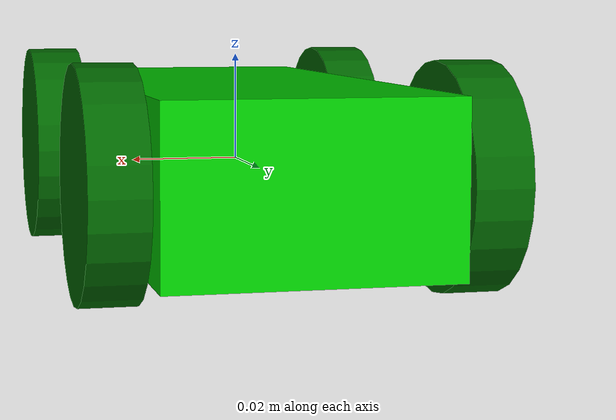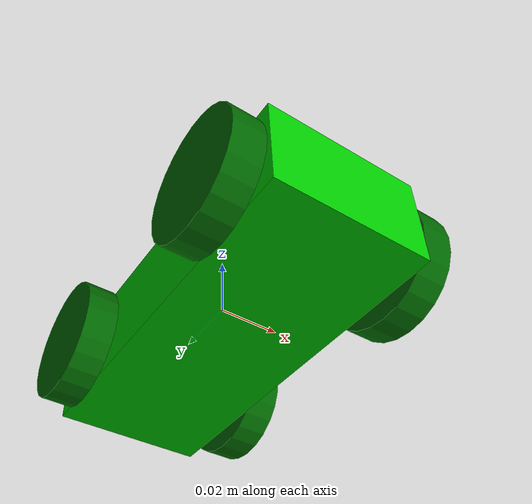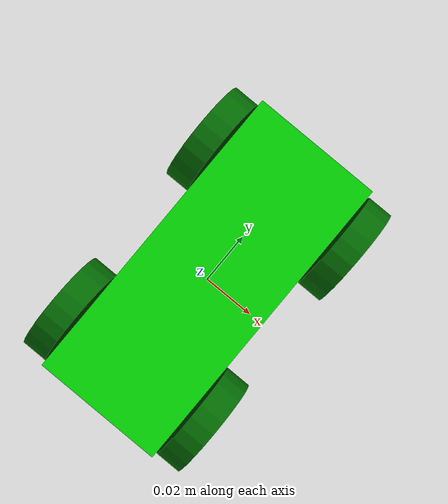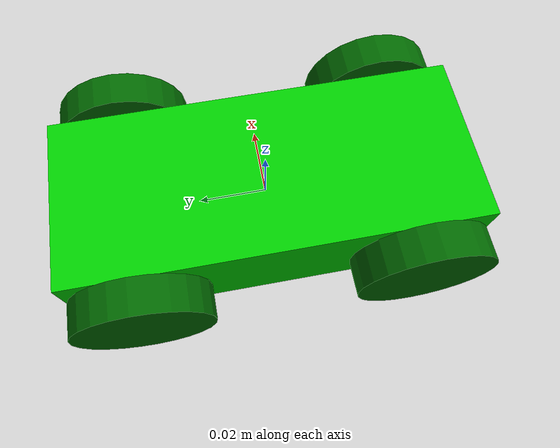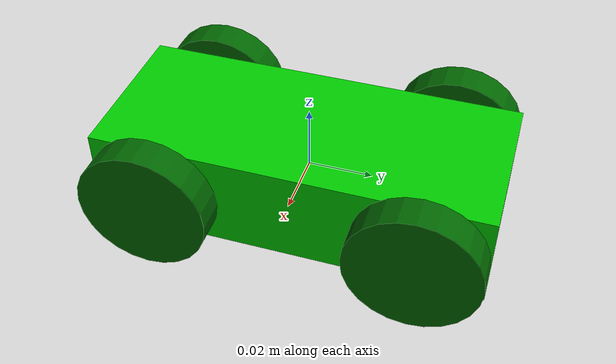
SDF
<?xml version='1.0'?>
<sdf version='1.6'>
  <model name='Robot1'>
    <link name='chassis'>
      <inertial>
        <mass>1</mass>
        <inertia>
          <ixx>0.166667</ixx>
          <ixy>0</ixy>
          <ixz>0</ixz>
          <iyy>0.166667</iyy>
          <iyz>0</iyz>
          <izz>0.166667</izz>
        </inertia>
        <pose frame=''>0 0 0 0 -0 0</pose>
      </inertial>
      <pose frame=''>0 0 -0 0 -0 0</pose>
      <gravity>1</gravity>
      <self_collide>0</self_collide>
      <kinematic>0</kinematic>
      <enable_wind>0</enable_wind>
      <visual name='visual'>
        <pose frame=''>0 0 0 0 -0 0</pose>
        <geometry>
          <box>
            <size>0.05 0.12 0.03</size>
          </box>
        </geometry>
        <material>
          <lighting>1</lighting>
          <script>
            <uri>file://media/materials/scripts/gazebo.material</uri>
            <name>Gazebo/Grey</name>
          </script>
          <shader type='pixel'>
            <normal_map>__default__</normal_map>
          </shader>
          <ambient>0 0.8 0 1</ambient>
          <diffuse>0 0.8 0 1</diffuse>
          <specular>0 0.8 0 1</specular>
          <emissive>0 0 0 1</emissive>
        </material>
        <transparency>0</transparency>
        <cast_shadows>1</cast_shadows>
      </visual>
      <collision name='collision'>
        <laser_retro>0</laser_retro>
        <max_contacts>10</max_contacts>
        <pose frame=''>0 0 0 0 -0 0</pose>
        <geometry>
          <box>
            <size>0.05 0.12 0.03</size>
          </box>
        </geometry>
        <surface>
          <friction>
            <ode>
              <mu>1</mu>
              <mu2>1</mu2>
              <fdir1>0 0 0</fdir1>
              <slip1>0</slip1>
              <slip2>0</slip2>
            </ode>
            <torsional>
              <coefficient>1</coefficient>
              <patch_radius>0</patch_radius>
              <surface_radius>0</surface_radius>
              <use_patch_radius>1</use_patch_radius>
              <ode>
                <slip>0</slip>
              </ode>
            </torsional>
          </friction>
          <bounce>
            <restitution_coefficient>0</restitution_coefficient>
            <threshold>1e+06</threshold>
          </bounce>
          <contact>
            <collide_without_contact>0</collide_without_contact>
            <collide_without_contact_bitmask>1</collide_without_contact_bitmask>
            <collide_bitmask>1</collide_bitmask>
            <ode>
              <soft_cfm>0</soft_cfm>
              <soft_erp>0.2</soft_erp>
              <kp>1e+13</kp>
              <kd>1</kd>
              <max_vel>0.01</max_vel>
              <min_depth>0</min_depth>
            </ode>
            <bullet>
              <split_impulse>1</split_impulse>
              <split_impulse_penetration_threshold>-0.01</split_impulse_penetration_threshold>
              <soft_cfm>0</soft_cfm>
              <soft_erp>0.2</soft_erp>
              <kp>1e+13</kp>
              <kd>1</kd>
            </bullet>
          </contact>
        </surface>
      </collision>
    </link>

    <!-- wheel_fl -->

    <link name='wheel_fl'>
      <inertial>
        <mass>1</mass>
        <inertia>
          <ixx>0.145833</ixx>
          <ixy>0</ixy>
          <ixz>0</ixz>
          <iyy>0.145833</iyy>
          <iyz>0</iyz>
          <izz>0.125</izz>
        </inertia>
        <pose frame=''>0 0 0 0 -0 0</pose>
      </inertial>
      <pose frame=''>-0.031 0.04 -0 1.5707 0 1.5707</pose>
      <gravity>1</gravity>
      <self_collide>0</self_collide>
      <kinematic>0</kinematic>
      <enable_wind>0</enable_wind>
      <visual name='visual'>
        <pose frame=''>0 0 0 0 -0 0</pose>
        <geometry>
          <cylinder>
            <radius>0.02</radius>
            <length>0.01</length>
          </cylinder>
        </geometry>
        <material>
          <lighting>1</lighting>
          <script>
            <uri>file://media/materials/scripts/gazebo.material</uri>
            <name>Gazebo/Grey</name>
          </script>
          <shader type='pixel'>
            <normal_map>__default__</normal_map>
          </shader>
          <ambient>0 0.4 0 1</ambient>
          <diffuse>0 0.4 0 1</diffuse>
          <specular>0 0.4 0 1</specular>
          <emissive>0 0 0 1</emissive>
        </material>
        <transparency>0</transparency>
        <cast_shadows>1</cast_shadows>
      </visual>
      <collision name='collision'>
        <laser_retro>0</laser_retro>
        <max_contacts>10</max_contacts>
        <pose frame=''>0 0 0 0 -0 0</pose>
        <geometry>
          <cylinder>
            <radius>0.02</radius>
            <length>0.01</length>
          </cylinder>
        </geometry>
        <surface>
          <friction>
            <ode>
              <mu>1</mu>
              <mu2>1</mu2>
              <fdir1>0 0 0</fdir1>
              <slip1>0</slip1>
              <slip2>0</slip2>
            </ode>
            <torsional>
              <coefficient>1</coefficient>
              <patch_radius>0</patch_radius>
              <surface_radius>0</surface_radius>
              <use_patch_radius>1</use_patch_radius>
              <ode>
                <slip>0</slip>
              </ode>
            </torsional>
          </friction>
          <bounce>
            <restitution_coefficient>0</restitution_coefficient>
            <threshold>1e+06</threshold>
          </bounce>
          <contact>
            <collide_without_contact>0</collide_without_contact>
            <collide_without_contact_bitmask>1</collide_without_contact_bitmask>
            <collide_bitmask>1</collide_bitmask>
            <ode>
              <soft_cfm>0</soft_cfm>
              <soft_erp>0.2</soft_erp>
              <kp>1e+13</kp>
              <kd>1</kd>
              <max_vel>0.01</max_vel>
              <min_depth>0</min_depth>
            </ode>
            <bullet>
              <split_impulse>1</split_impulse>
              <split_impulse_penetration_threshold>-0.01</split_impulse_penetration_threshold>
              <soft_cfm>0</soft_cfm>
              <soft_erp>0.2</soft_erp>
              <kp>1e+13</kp>
              <kd>1</kd>
            </bullet>
          </contact>
        </surface>
      </collision>
    </link>

    <!-- wheel_bl -->

    <link name='wheel_bl'>
      <inertial>
        <mass>1</mass>
        <inertia>
          <ixx>0.145833</ixx>
          <ixy>0</ixy>
          <ixz>0</ixz>
          <iyy>0.145833</iyy>
          <iyz>0</iyz>
          <izz>0.125</izz>
        </inertia>
        <pose frame=''>0 0 0 0 -0 0</pose>
      </inertial>
      <pose frame=''>-0.031 -0.04 -0 1.5707 0 1.5707</pose>
      <gravity>1</gravity>
      <self_collide>0</self_collide>
      <kinematic>0</kinematic>
      <enable_wind>0</enable_wind>
      <visual name='visual'>
        <pose frame=''>0 0 0 0 -0 0</pose>
        <geometry>
          <cylinder>
            <radius>0.02</radius>
            <length>0.01</length>
          </cylinder>
        </geometry>
        <material>
          <lighting>1</lighting>
          <script>
            <uri>file://media/materials/scripts/gazebo.material</uri>
            <name>Gazebo/Grey</name>
          </script>
          <shader type='pixel'>
            <normal_map>__default__</normal_map>
          </shader>
          <ambient>0 0.3 0 1</ambient>
          <diffuse>0 0.4 0 1</diffuse>
          <specular>0 0.4 0 1</specular>
          <emissive>0 0 0 1</emissive>
        </material>
        <transparency>0</transparency>
        <cast_shadows>1</cast_shadows>
      </visual>
      <collision name='collision'>
        <laser_retro>0</laser_retro>
        <max_contacts>10</max_contacts>
        <pose frame=''>0 0 0 0 -0 0</pose>
        <geometry>
          <cylinder>
            <radius>0.02</radius>
            <length>0.01</length>
          </cylinder>
        </geometry>
        <surface>
          <friction>
            <ode>
              <mu>1</mu>
              <mu2>1</mu2>
              <fdir1>0 0 0</fdir1>
              <slip1>0</slip1>
              <slip2>0</slip2>
            </ode>
            <torsional>
              <coefficient>1</coefficient>
              <patch_radius>0</patch_radius>
              <surface_radius>0</surface_radius>
              <use_patch_radius>1</use_patch_radius>
              <ode>
                <slip>0</slip>
              </ode>
            </torsional>
          </friction>
          <bounce>
            <restitution_coefficient>0</restitution_coefficient>
            <threshold>1e+06</threshold>
          </bounce>
          <contact>
            <collide_without_contact>0</collide_without_contact>
            <collide_without_contact_bitmask>1</collide_without_contact_bitmask>
            <collide_bitmask>1</collide_bitmask>
            <ode>
              <soft_cfm>0</soft_cfm>
              <soft_erp>0.2</soft_erp>
              <kp>1e+13</kp>
              <kd>1</kd>
              <max_vel>0.01</max_vel>
              <min_depth>0</min_depth>
            </ode>
            <bullet>
              <split_impulse>1</split_impulse>
              <split_impulse_penetration_threshold>-0.01</split_impulse_penetration_threshold>
              <soft_cfm>0</soft_cfm>
              <soft_erp>0.2</soft_erp>
              <kp>1e+13</kp>
              <kd>1</kd>
            </bullet>
          </contact>
        </surface>
      </collision>
    </link>

    <!-- wheel_br -->

    <link name='wheel_br'>
      <inertial>
        <mass>1</mass>
        <inertia>
          <ixx>0.145833</ixx>
          <ixy>0</ixy>
          <ixz>0</ixz>
          <iyy>0.145833</iyy>
          <iyz>0</iyz>
          <izz>0.125</izz>
        </inertia>
        <pose frame=''>0 0 0 0 -0 0</pose>
      </inertial>
      <pose frame=''>0.031 -0.04 -0 1.5707 0 1.5707</pose>
      <gravity>1</gravity>
      <self_collide>0</self_collide>
      <kinematic>0</kinematic>
      <enable_wind>0</enable_wind>
      <visual name='visual'>
        <pose frame=''>0 0 0 0 -0 0</pose>
        <geometry>
          <cylinder>
            <radius>0.02</radius>
            <length>0.01</length>
          </cylinder>
        </geometry>
        <material>
          <lighting>1</lighting>
          <script>
            <uri>file://media/materials/scripts/gazebo.material</uri>
            <name>Gazebo/Grey</name>
          </script>
          <shader type='pixel'>
            <normal_map>__default__</normal_map>
          </shader>
          <ambient>0 0.4 0 1</ambient>
          <diffuse>0 0.4 0 1</diffuse>
          <specular>0 0.4 0 1</specular>
          <emissive>0 0 0 1</emissive>
        </material>
        <transparency>0</transparency>
        <cast_shadows>1</cast_shadows>
      </visual>
      <collision name='collision'>
        <laser_retro>0</laser_retro>
        <max_contacts>10</max_contacts>
        <pose frame=''>0 0 0 0 -0 0</pose>
        <geometry>
          <cylinder>
            <radius>0.02</radius>
            <length>0.01</length>
          </cylinder>
        </geometry>
        <surface>
          <friction>
            <ode>
              <mu>1</mu>
              <mu2>1</mu2>
              <fdir1>0 0 0</fdir1>
              <slip1>0</slip1>
              <slip2>0</slip2>
            </ode>
            <torsional>
              <coefficient>1</coefficient>
              <patch_radius>0</patch_radius>
              <surface_radius>0</surface_radius>
              <use_patch_radius>1</use_patch_radius>
              <ode>
                <slip>0</slip>
              </ode>
            </torsional>
          </friction>
          <bounce>
            <restitution_coefficient>0</restitution_coefficient>
            <threshold>1e+06</threshold>
          </bounce>
          <contact>
            <collide_without_contact>0</collide_without_contact>
            <collide_without_contact_bitmask>1</collide_without_contact_bitmask>
            <collide_bitmask>1</collide_bitmask>
            <ode>
              <soft_cfm>0</soft_cfm>
              <soft_erp>0.2</soft_erp>
              <kp>1e+13</kp>
              <kd>1</kd>
              <max_vel>0.01</max_vel>
              <min_depth>0</min_depth>
            </ode>
            <bullet>
              <split_impulse>1</split_impulse>
              <split_impulse_penetration_threshold>-0.01</split_impulse_penetration_threshold>
              <soft_cfm>0</soft_cfm>
              <soft_erp>0.2</soft_erp>
              <kp>1e+13</kp>
              <kd>1</kd>
            </bullet>
          </contact>
        </surface>
      </collision>
    </link>

    <!-- wheel_fr -->

    <link name='wheel_fr'>
      <inertial>
        <mass>1</mass>
        <inertia>
          <ixx>0.145833</ixx>
          <ixy>0</ixy>
          <ixz>0</ixz>
          <iyy>0.145833</iyy>
          <iyz>0</iyz>
          <izz>0.125</izz>
        </inertia>
        <pose frame=''>0 0 0 0 -0 0</pose>
      </inertial>
      <pose frame=''>0.031 0.04 -0 1.5707 0 1.5707</pose>
      <gravity>1</gravity>
      <self_collide>0</self_collide>
      <kinematic>0</kinematic>
      <enable_wind>0</enable_wind>
      <visual name='visual'>
        <pose frame=''>0 0 0 0 -0 0</pose>
        <geometry>
          <cylinder>
            <radius>0.02</radius>
            <length>0.01</length>
          </cylinder>
        </geometry>
        <material>
          <lighting>1</lighting>
          <script>
            <uri>file://media/materials/scripts/gazebo.material</uri>
            <name>Gazebo/Grey</name>
          </script>
          <shader type='pixel'>
            <normal_map>__default__</normal_map>
          </shader>
          <ambient>0 0.4 0 1</ambient>
          <diffuse>0 0.4 0 1</diffuse>
          <specular>0 0.4 0 1</specular>
          <emissive>0 0 0 1</emissive>
        </material>
        <transparency>0</transparency>
        <cast_shadows>1</cast_shadows>
      </visual>
      <collision name='collision'>
        <laser_retro>0</laser_retro>
        <max_contacts>10</max_contacts>
        <pose frame=''>0 0 0 0 -0 0</pose>
        <geometry>
          <cylinder>
            <radius>0.02</radius>
            <length>0.01</length>
          </cylinder>
        </geometry>
        <surface>
          <friction>
            <ode>
              <mu>1</mu>
              <mu2>1</mu2>
              <fdir1>0 0 0</fdir1>
              <slip1>0</slip1>
              <slip2>0</slip2>
            </ode>
            <torsional>
              <coefficient>1</coefficient>
              <patch_radius>0</patch_radius>
              <surface_radius>0</surface_radius>
              <use_patch_radius>1</use_patch_radius>
              <ode>
                <slip>0</slip>
              </ode>
            </torsional>
          </friction>
          <bounce>
            <restitution_coefficient>0</restitution_coefficient>
            <threshold>1e+06</threshold>
          </bounce>
          <contact>
            <collide_without_contact>0</collide_without_contact>
            <collide_without_contact_bitmask>1</collide_without_contact_bitmask>
            <collide_bitmask>1</collide_bitmask>
            <ode>
              <soft_cfm>0</soft_cfm>
              <soft_erp>0.2</soft_erp>
              <kp>1e+13</kp>
              <kd>1</kd>
              <max_vel>0.01</max_vel>
              <min_depth>0</min_depth>
            </ode>
            <bullet>
              <split_impulse>1</split_impulse>
              <split_impulse_penetration_threshold>-0.01</split_impulse_penetration_threshold>
              <soft_cfm>0</soft_cfm>
              <soft_erp>0.2</soft_erp>
              <kp>1e+13</kp>
              <kd>1</kd>
            </bullet>
          </contact>
        </surface>
      </collision>
    </link>

    <!-- Joints -->

    <joint name='wheel_fl_joint' type='revolute'>
      <parent>chassis</parent>
      <child>wheel_fl</child>
      <pose frame=''>0 0 0 0 -0 0</pose>
      <axis>
        <xyz>0 0 1</xyz>
        <use_parent_model_frame>0</use_parent_model_frame>
        <limit>
          <lower>-1.79769e+308</lower>
          <upper>1.79769e+308</upper>
          <effort>-1</effort>
          <velocity>-1</velocity>
        </limit>
        <dynamics>
          <spring_reference>0</spring_reference>
          <spring_stiffness>0</spring_stiffness>
          <damping>0</damping>
        </dynamics>
      </axis>
      <physics>
        <ode>
          <limit>
            <cfm>0</cfm>
            <erp>0.2</erp>
          </limit>
          <suspension>
            <cfm>0</cfm>
            <erp>0.2</erp>
          </suspension>
        </ode>
      </physics>
    </joint>
    <joint name='wheel_fr_joint' type='revolute'>
      <parent>chassis</parent>
      <child>wheel_fr</child>
      <pose frame=''>0 0 0 0 -0 0</pose>
      <axis>
        <xyz>0 0 1</xyz>
        <use_parent_model_frame>0</use_parent_model_frame>
        <limit>
          <lower>-1.79769e+308</lower>
          <upper>1.79769e+308</upper>
          <effort>-1</effort>
          <velocity>-1</velocity>
        </limit>
        <dynamics>
          <spring_reference>0</spring_reference>
          <spring_stiffness>0</spring_stiffness>
          <damping>0</damping>
        </dynamics>
      </axis>
      <physics>
        <ode>
          <limit>
            <cfm>0</cfm>
            <erp>0.2</erp>
          </limit>
          <suspension>
            <cfm>0</cfm>
            <erp>0.2</erp>
          </suspension>
        </ode>
      </physics>
    </joint>
    <joint name='wheel_bl_joint' type='revolute'>
      <parent>chassis</parent>
      <child>wheel_bl</child>
      <pose frame=''>0 0 0 0 -0 0</pose>
      <axis>
        <xyz>0 0 1</xyz>
        <use_parent_model_frame>0</use_parent_model_frame>
        <limit>
          <lower>-1.79769e+308</lower>
          <upper>1.79769e+308</upper>
          <effort>-1</effort>
          <velocity>-1</velocity>
        </limit>
        <dynamics>
          <spring_reference>0</spring_reference>
          <spring_stiffness>0</spring_stiffness>
          <damping>0</damping>
        </dynamics>
      </axis>
      <physics>
        <ode>
          <limit>
            <cfm>0</cfm>
            <erp>0.2</erp>
          </limit>
          <suspension>
            <cfm>0</cfm>
            <erp>0.2</erp>
          </suspension>
        </ode>
      </physics>
    </joint>
    <joint name='wheel_br_joint' type='revolute'>
      <parent>chassis</parent>
      <child>wheel_br</child>
      <pose frame=''>0 0 0 0 -0 0</pose>
      <axis>
        <xyz>0 0 1</xyz>
        <use_parent_model_frame>0</use_parent_model_frame>
        <limit>
          <lower>-1.79769e+308</lower>
          <upper>1.79769e+308</upper>
          <effort>-1</effort>
          <velocity>-1</velocity>
        </limit>
        <dynamics>
          <spring_reference>0</spring_reference>
          <spring_stiffness>0</spring_stiffness>
          <damping>0</damping>
        </dynamics>
      </axis>
      <physics>
        <ode>
          <limit>
            <cfm>0</cfm>
            <erp>0.2</erp>
          </limit>
          <suspension>
            <cfm>0</cfm>
            <erp>0.2</erp>
          </suspension>
        </ode>
      </physics>
    </joint>
    <static>0</static>
    <allow_auto_disable>1</allow_auto_disable>
  </model>
</sdf>
